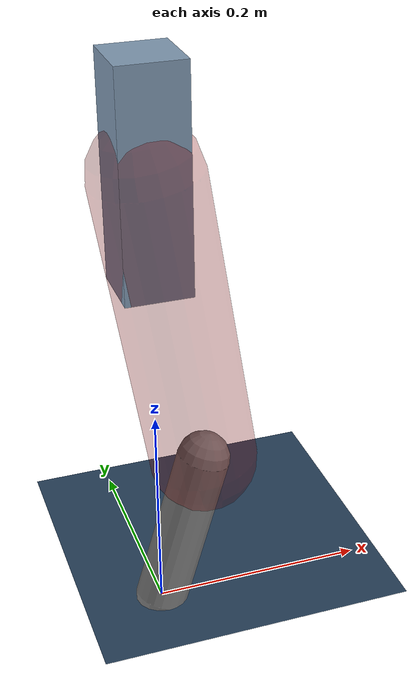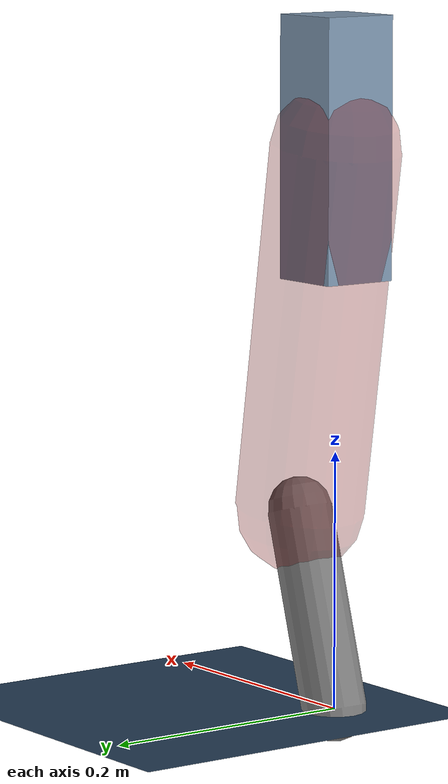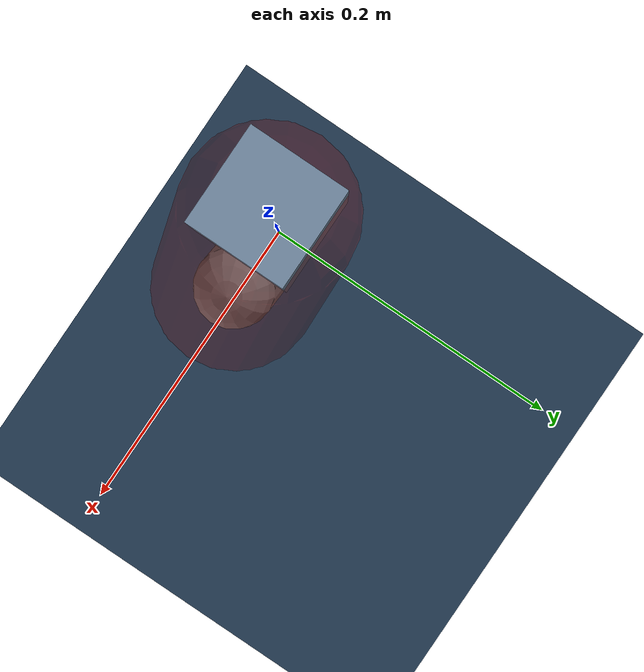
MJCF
<mujoco model="Hopper2D">
	<compiler inertiafromgeom="true" angle="radian" />
	<option timestep="0.001" integrator="implicit" cone="elliptic" solver="Newton" tolerance="1e-10" />

	<default>
		<geom contype="1" conaffinity="1" condim="3" friction="2 0.005 0.0001" solref="0.005 1" />
		<joint limited="true" damping="0.1" />
	</default>

	<asset>
		<texture name="skybox" type="skybox" builtin="gradient" rgb1=".4 .6 .8" rgb2="0 0 0" width="800" height="800" />
		<texture name="grid" type="2d" builtin="checker" rgb1=".1 .2 .3" rgb2=".2 .3 .4" width="300" height="300" mark="edge" markrgb=".2 .3 .4" />
		<material name="ground" texture="grid" texrepeat="1 1" texuniform="true" reflectance="0.1" />
		<material name="leg" rgba="0.5 0.6 0.7 1" />
	</asset>

	<worldbody>

		<geom name="floor" type="plane" size="5 5 0.25" material="ground" />

		<light directional="false" diffuse="0.8 0.8 0.8" specular="0.3 0.3 0.3" pos="0 0 2" dir="0 0 -1" />
		<light mode="targetbodycom" target="base" directional="false" diffuse="0.8 0.8 0.8" specular="0.3 0.3 0.3" pos="0 0 2" dir="0 0 -1" />

		<camera name="fixed" pos="0 -2 1" xyaxes="1 0 0 0 0 1" />
		<camera name="tracking" mode="trackcom" pos="0 -3 1" />

		<body name="root" pos="0 0 0.43211628774297506">
			<joint name="slide_x" type="slide" axis="1 0 0" range="-100 100" />
			<joint name="slide_z" type="slide" axis="0 0 1" range="0 10" />

			<body name="base" pos="0 0 0">
				<geom name="torso" type="box" size="0.03 0.03 0.1" mass="2.2030000000000003" material="leg" />

				<body name="link1" pos="0 0 0" euler="0 1.4139972449386489 0">
					<joint type="hinge" axis="0 -1 0" pos="0 0 0" name="hinge1" limited="true" range="-3.14 3.14" stiffness="0" damping="0.1" />
					<geom name="thigh" type="capsule" fromto="0 0 0 0.28567599454035275 0 0" size="0.05" rgba="0.5 0 0 0.3" mass="0.9502251852589525" />

					<body name="link2" pos="0.28567599454035275 0 0" euler="0 0.44597174138995754 0">
						<joint type="hinge" axis="0 -1 0" pos="0 0 0" name="hinge2" limited="true" range="-3.14 3.14" stiffness="0" damping="0.1" />
						<geom name="shank" type="capsule" fromto="0 0 0 0.15644029320262234 0 0" size="0.025" mass="0.3633962638823601" />

					</body>
				</body>
			</body>
		</body>
	</worldbody>

	<actuator>
		<motor name="torque1" joint="hinge1" ctrlrange="-42.352459280278325 42.352459280278325" ctrllimited="true" gear="1" />
		<motor name="torque2" joint="hinge2" ctrlrange="-51.11193781733689 51.11193781733689" ctrllimited="true" gear="1" />
	</actuator>
</mujoco>
